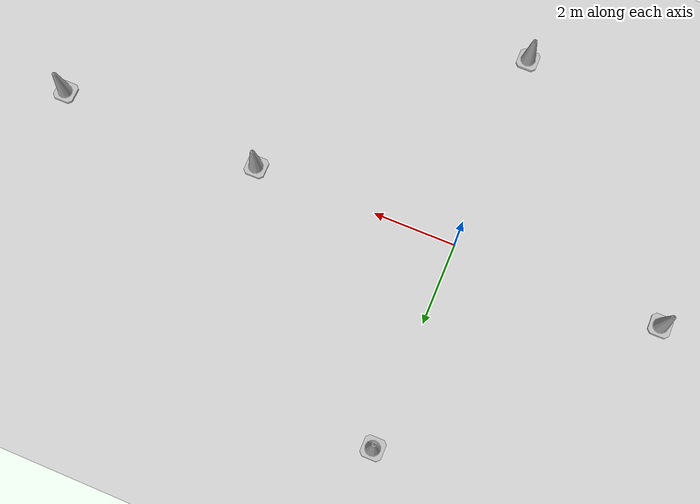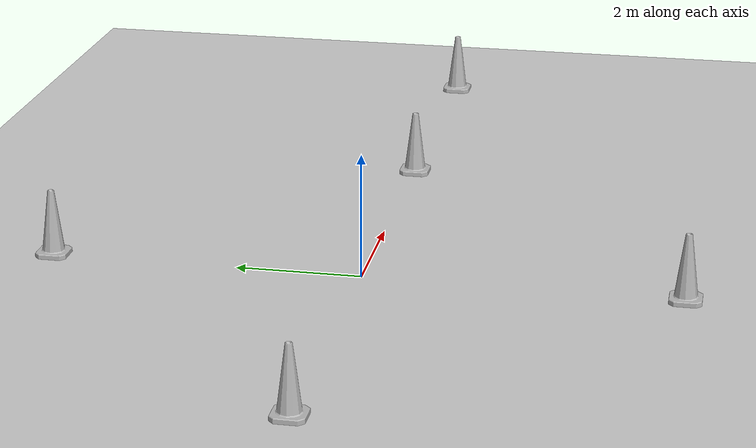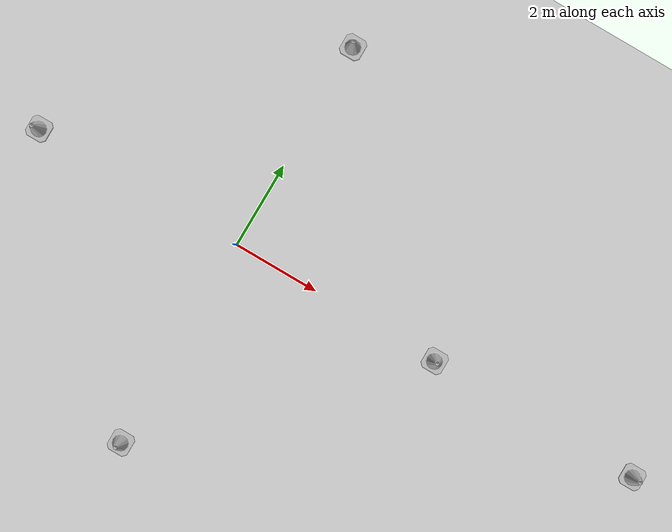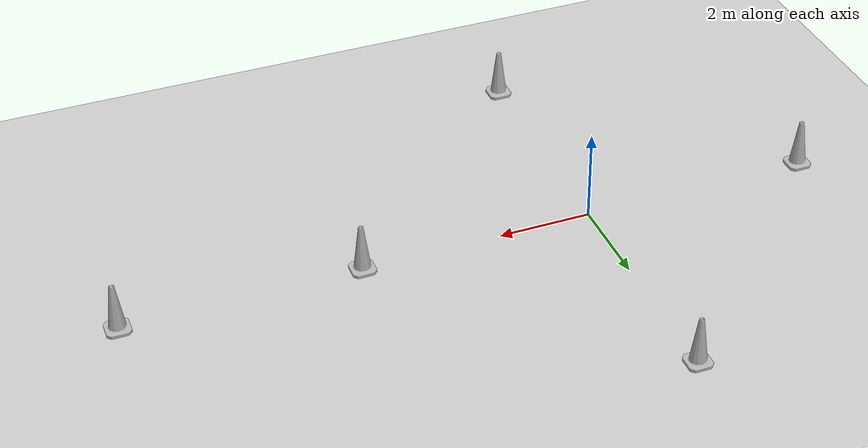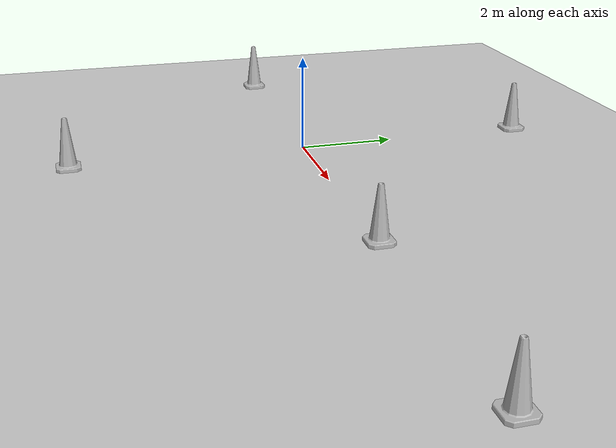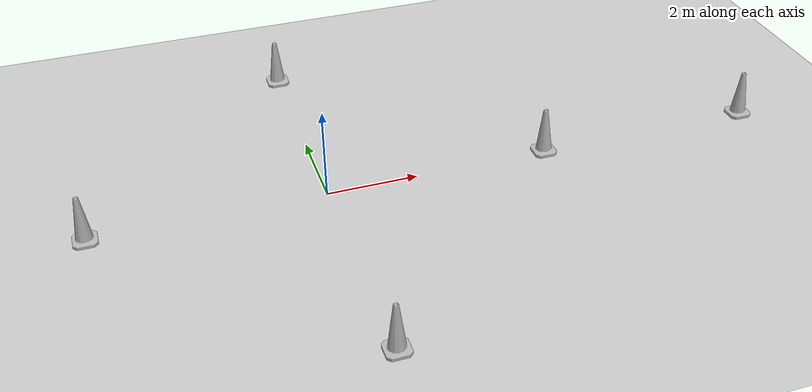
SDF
<?xml version="1.0" ?>
<sdf version="1.5">
	<world name="default">
		<!-- Beacons -->
		<include>
			<name>beacon1</name>
			<uri>model://construction_cone</uri>
			<pose>0 5 0 0 0 0</pose>
		</include>
		<include>
			<name>beacon2</name>
			<uri>model://construction_cone</uri>
			<pose>5 0 0 0 0 0</pose>
		</include>
		<include>
			<name>beacon3</name>
			<uri>model://construction_cone</uri>
			<pose>0 -5 0 0 0 0</pose>
		</include>
		<include>
			<name>beacon4</name>
			<uri>model://construction_cone</uri>
			<pose>-5 0 0 0 0 0</pose>
		</include>
		<include>
			<name>beacon5</name>
			<uri>model://construction_cone</uri>
			<pose>10 0 0 0 0 0</pose>
		</include>

		<!-- A global light source -->
		<include>
			<uri>model://sun</uri>
		</include>

		<!-- Ground -->
		<include>
			<uri>model://ground_plane</uri>
		</include>

		<!-- Gazebo required specifications -->
		<physics name='default_physics' default='0' type='ode'>
			<gravity>0 0 -9.8066</gravity>
			<ode>
				<solver>
					<type>quick</type>
					<iters>10</iters>
					<sor>1.3</sor>
					<use_dynamic_moi_rescaling>0</use_dynamic_moi_rescaling>
				</solver>
				<constraints>
					<cfm>0</cfm>
					<erp>0.2</erp>
					<contact_max_correcting_vel>100</contact_max_correcting_vel>
					<contact_surface_layer>0.001</contact_surface_layer>
				</constraints>
			</ode>
			<max_step_size>0.004</max_step_size>
			<real_time_factor>1</real_time_factor>
			<real_time_update_rate>250</real_time_update_rate>
			<magnetic_field>6.0e-6 2.3e-5 -4.2e-5</magnetic_field>
		</physics>

	</world>
</sdf>

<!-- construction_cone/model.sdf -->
<sdf version="1.5">
  <model name="Construction Cone">
    <link name="link">
      <collision name="collision">
        <geometry>
          <mesh>
            <scale>10 10 10</scale>
            <uri>file://isr-testbed/construction_cone/meshes/construction_cone.dae</uri>
          </mesh>
        </geometry>
      </collision>
      <visual name="visual">
        <geometry>
          <mesh>
            <scale>10 10 10</scale>
            <uri>file://isr-testbed/construction_cone/meshes/construction_cone.dae</uri>
          </mesh>
        </geometry>
      </visual>
    </link>
  </model>
</sdf>
